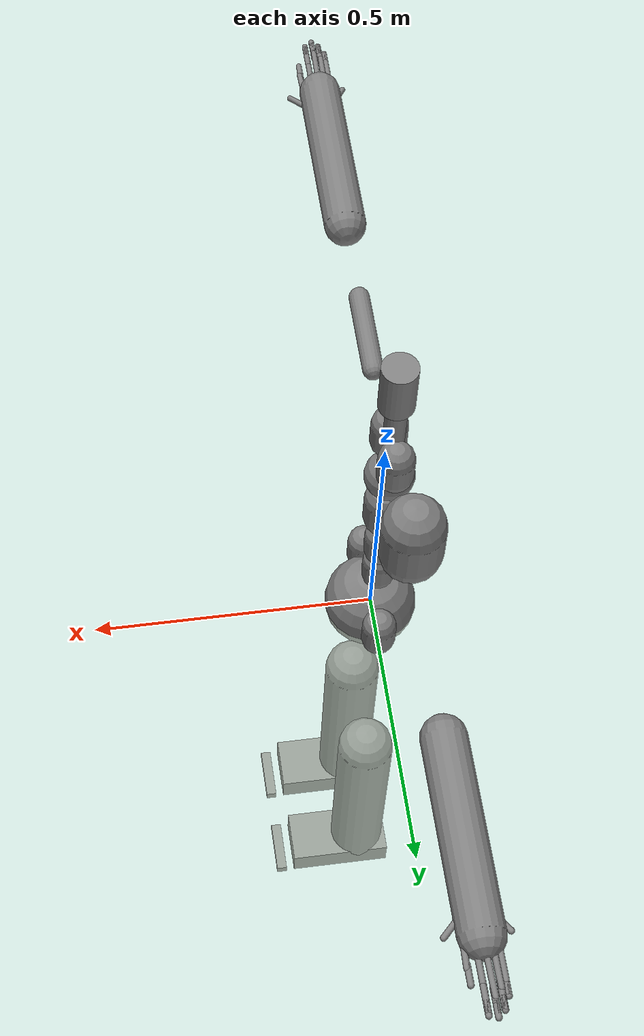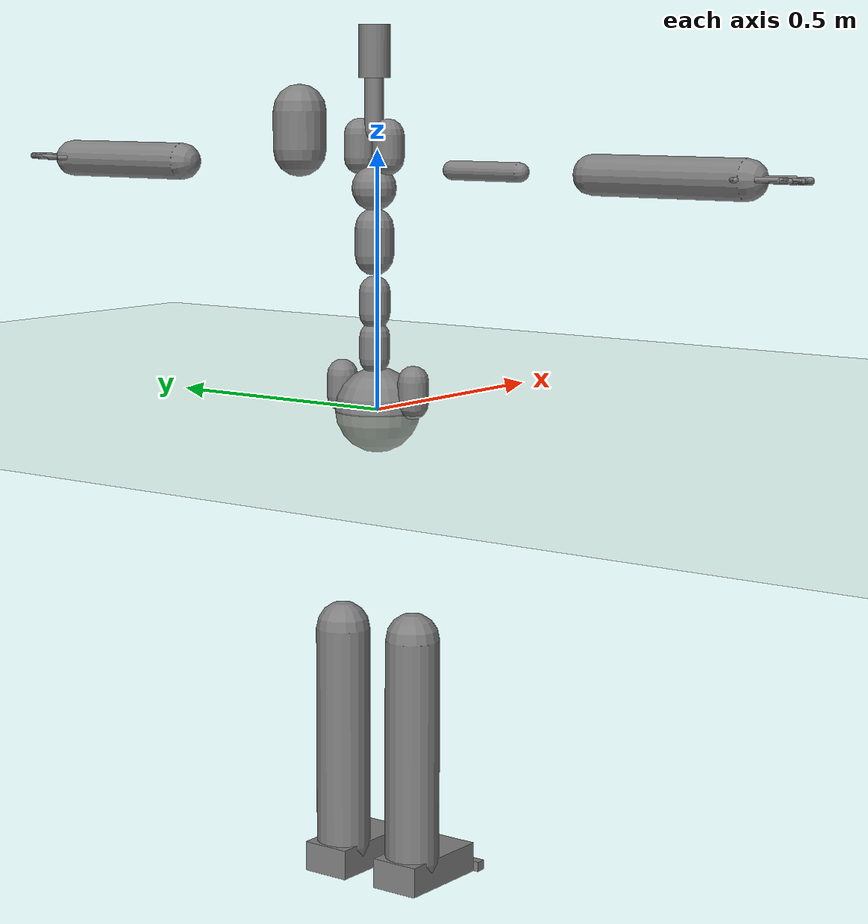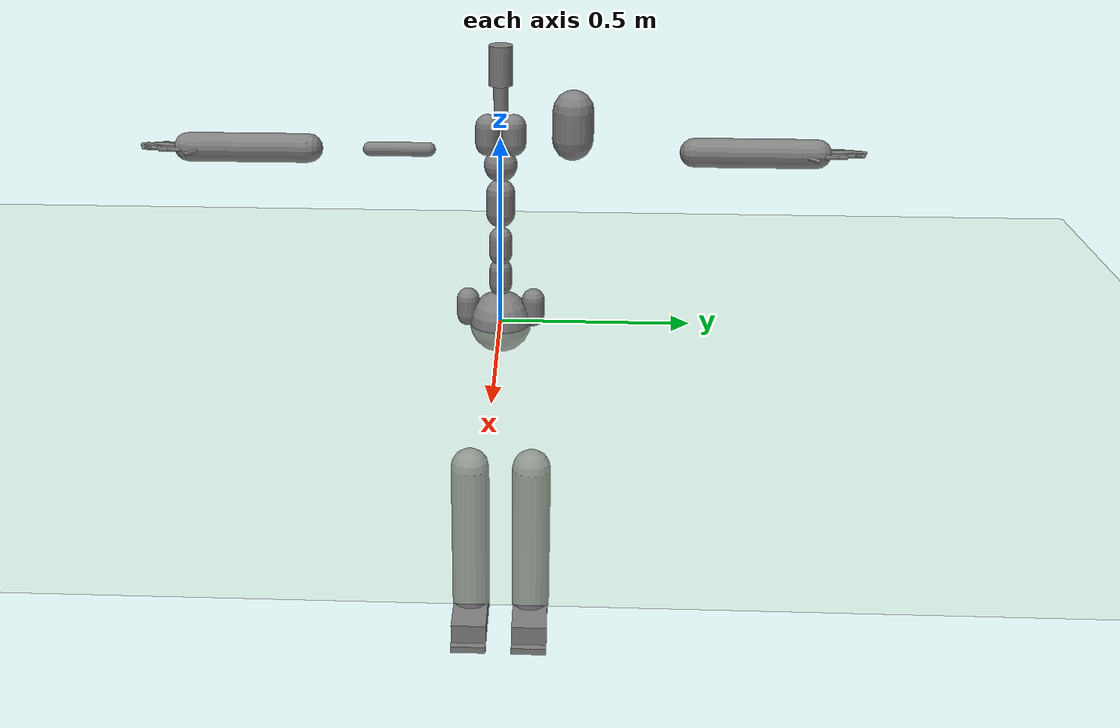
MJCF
<?xml version="1.0" ?>
<mujoco model="humanoid">
  <compiler coordinate="local"/>
  <statistic extent="2" center="0 0 1"/>
  <option timestep="0.00555"/>
  <default>
    <motor ctrlrange="-1 1" ctrllimited="true"/>
    <geom type="capsule" condim="1" friction="1.0 0.05 0.05" solimp=".9 .99 .003" solref=".015 1"/>
    <joint type="hinge" damping="0.1" stiffness="5" armature=".007" limited="true" solimplimit="0 .99 .01"/>
    <site size=".04" group="3"/>
  </default>
  <asset>
    <texture type="skybox" builtin="gradient" rgb1=".4 .5 .6" rgb2="0 0 0" width="100" height="100"/>
    <texture builtin="flat" height="1278" mark="cross" markrgb="1 1 1" name="texgeom" random="0.01" rgb1="0.8 0.6 0.4" rgb2="0.8 0.6 0.4" type="cube" width="127"/>
    <texture builtin="checker" height="100" name="texplane" rgb1="0 0 0" rgb2="0.8 0.8 0.8" type="2d" width="100"/>
    <material name="MatPlane" reflectance="0.5" shininess="1" specular="1" texrepeat="60 60" texture="texplane"/>
    <material name="geom" texture="texgeom" texuniform="true"/>
  </asset>
  <worldbody>
    <light cutoff="100" diffuse="1 1 1" dir="-0 0 -1.3" directional="true" exponent="1" pos="0 0 1.3" specular=".1 .1 .1"/>
    <geom conaffinity="1" condim="3" name="floor" pos="0 0 0" rgba="0.8 0.9 0.8 1" size="100 100 .2" type="plane" material="MatPlane"/>
    <body name="pHipOrigin" pos="0 0 0">
      <freejoint name="pHipOrigin"/>
      <geom type="sphere" contype="1" conaffinity="1" density="4629.6296296296305" size="0.08276" pos="0.0000 0.0000 -0.0000"/>
      <body name="jL5S1" pos="-0.00932583 0 0.08393225">
        <geom type="capsule" contype="1" conaffinity="1" density="1000" fromto="0 0 0.01689 0 0 0.05911" size="0.02956"/>
        <joint name="jL5S1_x" type="hinge" pos="0 0 0" axis="1 0 0" stiffness="500" damping="500" armature="0.02" range="-180.0000 180.0000"/>
        <joint name="jL5S1_y" type="hinge" pos="0 0 0" axis="0 1 0" stiffness="500" damping="500" armature="0.02" range="-180.0000 180.0000"/>
        <joint name="jL5S1_z" type="hinge" pos="0 0 0" axis="0 0 1" stiffness="500" damping="500" armature="0.02" range="-180.0000 180.0000"/>
        <body name="jL4L3" pos="0 0 0.08608951">
          <geom type="capsule" contype="1" conaffinity="1" density="1000" fromto="0 0 0.01722 0 0 0.06026" size="0.03013"/>
          <joint name="jL4L3_x" type="hinge" pos="0 0 0" axis="1 0 0" stiffness="500" damping="500" armature="0.02" range="-180.0000 180.0000"/>
          <joint name="jL4L3_y" type="hinge" pos="0 0 0" axis="0 1 0" stiffness="500" damping="500" armature="0.02" range="-180.0000 180.0000"/>
          <joint name="jL4L3_z" type="hinge" pos="0 0 0" axis="0 0 1" stiffness="500" damping="500" armature="0.02" range="-180.0000 180.0000"/>
          <body name="jL1T12" pos="-0.00082706 0 0.10720158">
            <geom type="capsule" contype="1" conaffinity="1" density="1000" fromto="0 0 0.02144 0 0 0.07504" size="0.03752"/>
            <joint name="jL1T12_x" type="hinge" pos="0 0 0" axis="1 0 0" stiffness="500" damping="500" armature="0.02" range="-180.0000 180.0000"/>
            <joint name="jL1T12_y" type="hinge" pos="0 0 0" axis="0 1 0" stiffness="500" damping="500" armature="0.02" range="-180.0000 180.0000"/>
            <joint name="jL1T12_z" type="hinge" pos="0 0 0" axis="0 0 1" stiffness="500" damping="500" armature="0.02" range="-180.0000 180.0000"/>
            <body name="jT9T8" pos="-0.00082871 0 0.10720678">
              <geom type="sphere" contype="1" conaffinity="1" density="1000" size="0.04288" pos="0.000 0.0000 0.042884"/>
              <joint name="jT9T8_x" type="hinge" pos="0 0 0" axis="1 0 0" stiffness="500" damping="500" armature="0.02" range="-180.0000 180.0000"/>
              <joint name="jT9T8_y" type="hinge" pos="0 0 0" axis="0 1 0" stiffness="500" damping="500" armature="0.02" range="-180.0000 180.0000"/>
              <joint name="jT9T8_z" type="hinge" pos="0 0 0" axis="0 0 1" stiffness="500" damping="500" armature="0.02" range="-180.0000 180.0000"/>
              <body name="jT1C7" pos="0 0 0.15026799">
                <geom type="capsule" contype="1" conaffinity="1" density="1000" fromto="0 0 0 0.00000000 0.00000000 0.15026799" size="0.01803"/>
                <joint name="jT1C7_x" type="hinge" pos="0 0 0" axis="1 0 0" stiffness="500" damping="500" armature="0.02" range="-180.0000 180.0000"/>
                <joint name="jT1C7_y" type="hinge" pos="0 0 0" axis="0 1 0" stiffness="500" damping="500" armature="0.02" range="-180.0000 180.0000"/>
                <joint name="jT1C7_z" type="hinge" pos="0 0 0" axis="0 0 1" stiffness="500" damping="500" armature="0.02" range="-180.0000 180.0000"/>
                <body name="jC1Head" pos="0.00117892 0 0.09992884">
                  <geom type="cylinder" contype="1" conaffinity="1" density="1000" fromto="0 0 0 0 0 0.09994" size="0.02998"/>
                  <joint name="jC1Head_x" type="hinge" pos="0 0 0" axis="1 0 0" stiffness="500" damping="500" armature="0.02" range="-180.0000 180.0000"/>
                  <joint name="jC1Head_y" type="hinge" pos="0 0 0" axis="0 1 0" stiffness="500" damping="500" armature="0.02" range="-180.0000 180.0000"/>
                  <joint name="jC1Head_z" type="hinge" pos="0 0 0" axis="0 0 1" stiffness="500" damping="500" armature="0.02" range="-180.0000 180.0000"/>
                </body>
              </body>
              <body name="jRightT4Shoulder" pos="0 -0.03356189 0.08183124">
                <geom type="capsule" contype="1" conaffinity="1" density="1000" fromto="0 0 0.01769 0 0 0.06191" size="0.03096"/>
                <joint name="jRightT4Shoulder_x" type="hinge" pos="0 0 0" axis="1 0 0" stiffness="500" damping="500" armature="0.02" range="-180.0000 180.0000"/>
                <joint name="jRightT4Shoulder_y" type="hinge" pos="0 0 0" axis="0 1 0" stiffness="500" damping="500" armature="0.02" range="-180.0000 180.0000"/>
                <joint name="jRightT4Shoulder_z" type="hinge" pos="0 0 0" axis="0 0 1" stiffness="500" damping="500" armature="0.02" range="-180.0000 180.0000"/>
                <body name="jRightShoulder" pos="0 -0.15032312 0">
                  <geom type="capsule" contype="1" conaffinity="1" density="1000" fromto="0 0 0 0.00000000 -0.15032312 0.00000000" size="0.01804"/>
                  <joint name="jRightShoulder_x" type="hinge" pos="0 0 0" axis="1 0 0" stiffness="500" damping="500" armature="0.02" range="-180.0000 180.0000"/>
                  <joint name="jRightShoulder_y" type="hinge" pos="0 0 0" axis="0 1 0" stiffness="500" damping="500" armature="0.02" range="-180.0000 180.0000"/>
                  <joint name="jRightShoulder_z" type="hinge" pos="0 0 0" axis="0 0 1" stiffness="500" damping="500" armature="0.02" range="-180.0000 180.0000"/>
                  <body name="jRightElbow" pos="0 -0.30869776 0">
                    <geom type="capsule" contype="1" conaffinity="1" density="1000" fromto="0 0 0 0.00000000 -0.30869776 0.00000000" size="0.03704"/>
                    <joint name="jRightElbow_x" type="hinge" pos="0 0 0" axis="1 0 0" stiffness="500" damping="500" armature="0.02" range="-180.0000 180.0000"/>
                    <joint name="jRightElbow_y" type="hinge" pos="0 0 0" axis="0 1 0" stiffness="500" damping="500" armature="0.02" range="-180.0000 180.0000"/>
                    <joint name="jRightElbow_z" type="hinge" pos="0 0 0" axis="0 0 1" stiffness="500" damping="500" armature="0.02" range="-180.0000 180.0000"/>
                    <body name="jRightWrist" pos="0.00010086 -0.25059176 0">
                      <geom density="1000" type="box" pos="0 0 0" size="0.035 0.03 0.01" quat="1.0000 0.0000 0.0000 0.0000"/>
                      <joint name="jRightWrist_x" type="hinge" pos="0 0 0" axis="1 0 0" stiffness="500" damping="500" armature="0.02" range="-180.0000 180.0000"/>
                      <joint name="jRightWrist_y" type="hinge" pos="0 0 0" axis="0 1 0" stiffness="500" damping="500" armature="0.02" range="-180.0000 180.0000"/>
                      <joint name="jRightWrist_z" type="hinge" pos="0 0 0" axis="0 0 1" stiffness="500" damping="500" armature="0.02" range="-180.0000 180.0000"/>
                      <body name="jRightFirstCMC" pos="0.02765944 -0.02651312 -0.00125259">
                        <geom type="capsule" contype="1" conaffinity="1" density="1000" fromto="0 0 0 0.02765944 -0.02651312 -0.00125259" size="0.005"/>
                        <joint name="jRightFirstCMC_x" type="hinge" pos="0 0 0" axis="1 0 0" stiffness="500" damping="500" armature="0.02" range="-180.0000 180.0000"/>
                        <joint name="jRightFirstCMC_y" type="hinge" pos="0 0 0" axis="0 1 0" stiffness="500" damping="500" armature="0.02" range="-180.0000 180.0000"/>
                        <joint name="jRightFirstCMC_z" type="hinge" pos="0 0 0" axis="0 0 1" stiffness="500" damping="500" armature="0.02" range="-180.0000 180.0000"/>
                        <body name="jRightFirstMCP" pos="0.00135224 -0.03815922 0.00080630">
                          <geom type="capsule" contype="1" conaffinity="1" density="1000" fromto="0 0 0 0.00135224 -0.03815922 0.00080630" size="0.005"/>
                          <joint name="jRightFirstMCP_x" type="hinge" pos="0 0 0" axis="1 0 0" stiffness="500" damping="500" armature="0.02" range="-180.0000 180.0000"/>
                          <joint name="jRightFirstMCP_y" type="hinge" pos="0 0 0" axis="0 1 0" stiffness="500" damping="500" armature="0.02" range="-180.0000 180.0000"/>
                          <joint name="jRightFirstMCP_z" type="hinge" pos="0 0 0" axis="0 0 1" stiffness="500" damping="500" armature="0.02" range="-180.0000 180.0000"/>
                          <body name="jRightIP" pos="0 -0.03100075 0">
                            <geom type="capsule" contype="1" conaffinity="1" density="1000" fromto="0 0 0 0.00000000 -0.03100075 0.00000000" size="0.005"/>
                            <joint name="jRightIP_x" type="hinge" pos="0 0 0" axis="1 0 0" stiffness="500" damping="500" armature="0.02" range="-180.0000 180.0000"/>
                            <joint name="jRightIP_y" type="hinge" pos="0 0 0" axis="0 1 0" stiffness="500" damping="500" armature="0.02" range="-180.0000 180.0000"/>
                            <joint name="jRightIP_z" type="hinge" pos="0 0 0" axis="0 0 1" stiffness="500" damping="500" armature="0.02" range="-180.0000 180.0000"/>
                          </body>
                        </body>
                      </body>
                      <body name="jRightSecondCMC" pos="0.01145456 -0.03346660 -0.00058374">
                        <geom type="capsule" contype="1" conaffinity="1" density="1000" fromto="0 0 0 0.01145456 -0.03346660 -0.00058374" size="0.005"/>
                        <joint name="jRightSecondCMC_x" type="hinge" pos="0 0 0" axis="1 0 0" stiffness="500" damping="500" armature="0.02" range="-180.0000 180.0000"/>
                        <joint name="jRightSecondCMC_y" type="hinge" pos="0 0 0" axis="0 1 0" stiffness="500" damping="500" armature="0.02" range="-180.0000 180.0000"/>
                        <joint name="jRightSecondCMC_z" type="hinge" pos="0 0 0" axis="0 0 1" stiffness="500" damping="500" armature="0.02" range="-180.0000 180.0000"/>
                        <body name="jRightSecondMCP" pos="-0.00034904 -0.05566987 -0.00057748">
                          <geom type="capsule" contype="1" conaffinity="1" density="1000" fromto="0 0 0 -0.00034904 -0.05566987 -0.00057748" size="0.005"/>
                          <joint name="jRightSecondMCP_x" type="hinge" pos="0 0 0" axis="1 0 0" stiffness="500" damping="500" armature="0.02" range="-180.0000 180.0000"/>
                          <joint name="jRightSecondMCP_y" type="hinge" pos="0 0 0" axis="0 1 0" stiffness="500" damping="500" armature="0.02" range="-180.0000 180.0000"/>
                          <joint name="jRightSecondMCP_z" type="hinge" pos="0 0 0" axis="0 0 1" stiffness="500" damping="500" armature="0.02" range="-180.0000 180.0000"/>
                          <body name="jRightSecondPIP" pos="0 -0.04019003 0">
                            <geom type="capsule" contype="1" conaffinity="1" density="1000" fromto="0 0 0 0.00000000 -0.04019003 0.00000000" size="0.005"/>
                            <joint name="jRightSecondPIP_x" type="hinge" pos="0 0 0" axis="1 0 0" stiffness="500" damping="500" armature="0.02" range="-180.0000 180.0000"/>
                            <joint name="jRightSecondPIP_y" type="hinge" pos="0 0 0" axis="0 1 0" stiffness="500" damping="500" armature="0.02" range="-180.0000 180.0000"/>
                            <joint name="jRightSecondPIP_z" type="hinge" pos="0 0 0" axis="0 0 1" stiffness="500" damping="500" armature="0.02" range="-180.0000 180.0000"/>
                            <body name="jRightSecondDIP" pos="0 -0.02186451 0">
                              <geom type="capsule" contype="1" conaffinity="1" density="1000" fromto="0 0 0 0.00000000 -0.02186451 0.00000000" size="0.005"/>
                              <joint name="jRightSecondDIP_x" type="hinge" pos="0 0 0" axis="1 0 0" stiffness="500" damping="500" armature="0.02" range="-180.0000 180.0000"/>
                              <joint name="jRightSecondDIP_y" type="hinge" pos="0 0 0" axis="0 1 0" stiffness="500" damping="500" armature="0.02" range="-180.0000 180.0000"/>
                              <joint name="jRightSecondDIP_z" type="hinge" pos="0 0 0" axis="0 0 1" stiffness="500" damping="500" armature="0.02" range="-180.0000 180.0000"/>
                            </body>
                          </body>
                        </body>
                      </body>
                      <body name="jRightThirdCMC" pos="-0.00072281 -0.03908799 0.00164332">
                        <geom type="capsule" contype="1" conaffinity="1" density="1000" fromto="0 0 0 -0.00072281 -0.03908799 0.00164332" size="0.005"/>
                        <joint name="jRightThirdCMC_x" type="hinge" pos="0 0 0" axis="1 0 0" stiffness="500" damping="500" armature="0.02" range="-180.0000 180.0000"/>
                        <joint name="jRightThirdCMC_y" type="hinge" pos="0 0 0" axis="0 1 0" stiffness="500" damping="500" armature="0.02" range="-180.0000 180.0000"/>
                        <joint name="jRightThirdCMC_z" type="hinge" pos="0 0 0" axis="0 0 1" stiffness="500" damping="500" armature="0.02" range="-180.0000 180.0000"/>
                        <body name="jRightThirdMCP" pos="-0.00066704 -0.05526414 0.00150352">
                          <geom type="capsule" contype="1" conaffinity="1" density="1000" fromto="0 0 0 -0.00066704 -0.05526414 0.00150352" size="0.005"/>
                          <joint name="jRightThirdMCP_x" type="hinge" pos="0 0 0" axis="1 0 0" stiffness="500" damping="500" armature="0.02" range="-180.0000 180.0000"/>
                          <joint name="jRightThirdMCP_y" type="hinge" pos="0 0 0" axis="0 1 0" stiffness="500" damping="500" armature="0.02" range="-180.0000 180.0000"/>
                          <joint name="jRightThirdMCP_z" type="hinge" pos="0 0 0" axis="0 0 1" stiffness="500" damping="500" armature="0.02" range="-180.0000 180.0000"/>
                          <body name="jRightThirdPIP" pos="0 -0.04208056 0">
                            <geom type="capsule" contype="1" conaffinity="1" density="1000" fromto="0 0 0 0.00000000 -0.04208056 0.00000000" size="0.005"/>
                            <joint name="jRightThirdPIP_x" type="hinge" pos="0 0 0" axis="1 0 0" stiffness="500" damping="500" armature="0.02" range="-180.0000 180.0000"/>
                            <joint name="jRightThirdPIP_y" type="hinge" pos="0 0 0" axis="0 1 0" stiffness="500" damping="500" armature="0.02" range="-180.0000 180.0000"/>
                            <joint name="jRightThirdPIP_z" type="hinge" pos="0 0 0" axis="0 0 1" stiffness="500" damping="500" armature="0.02" range="-180.0000 180.0000"/>
                            <body name="jRightThirdDIP" pos="0 -0.01854092 0">
                              <geom type="capsule" contype="1" conaffinity="1" density="1000" fromto="0 0 0 0.00000000 -0.01854092 0.00000000" size="0.005"/>
                              <joint name="jRightThirdDIP_x" type="hinge" pos="0 0 0" axis="1 0 0" stiffness="500" damping="500" armature="0.02" range="-180.0000 180.0000"/>
                              <joint name="jRightThirdDIP_y" type="hinge" pos="0 0 0" axis="0 1 0" stiffness="500" damping="500" armature="0.02" range="-180.0000 180.0000"/>
                              <joint name="jRightThirdDIP_z" type="hinge" pos="0 0 0" axis="0 0 1" stiffness="500" damping="500" armature="0.02" range="-180.0000 180.0000"/>
                            </body>
                          </body>
                        </body>
                      </body>
                      <body name="jRightFourthCMC" pos="-0.01189793 -0.03313772 0.00078001">
                        <geom type="capsule" contype="1" conaffinity="1" density="1000" fromto="0 0 0 -0.01189793 -0.03313772 0.00078001" size="0.005"/>
                        <joint name="jRightFourthCMC_x" type="hinge" pos="0 0 0" axis="1 0 0" stiffness="500" damping="500" armature="0.02" range="-180.0000 180.0000"/>
                        <joint name="jRightFourthCMC_y" type="hinge" pos="0 0 0" axis="0 1 0" stiffness="500" damping="500" armature="0.02" range="-180.0000 180.0000"/>
                        <joint name="jRightFourthCMC_z" type="hinge" pos="0 0 0" axis="0 0 1" stiffness="500" damping="500" armature="0.02" range="-180.0000 180.0000"/>
                        <body name="jRightFourthMCP" pos="-0.00038090 -0.05220571 0.00082019">
                          <geom type="capsule" contype="1" conaffinity="1" density="1000" fromto="0 0 0 -0.00038090 -0.05220571 0.00082019" size="0.005"/>
                          <joint name="jRightFourthMCP_x" type="hinge" pos="0 0 0" axis="1 0 0" stiffness="500" damping="500" armature="0.02" range="-180.0000 180.0000"/>
                          <joint name="jRightFourthMCP_y" type="hinge" pos="0 0 0" axis="0 1 0" stiffness="500" damping="500" armature="0.02" range="-180.0000 180.0000"/>
                          <joint name="jRightFourthMCP_z" type="hinge" pos="0 0 0" axis="0 0 1" stiffness="500" damping="500" armature="0.02" range="-180.0000 180.0000"/>
                          <body name="jRightFourthPIP" pos="0 -0.04168838 0">
                            <geom type="capsule" contype="1" conaffinity="1" density="1000" fromto="0 0 0 0.00000000 -0.04168838 0.00000000" size="0.005"/>
                            <joint name="jRightFourthPIP_x" type="hinge" pos="0 0 0" axis="1 0 0" stiffness="500" damping="500" armature="0.02" range="-180.0000 180.0000"/>
                            <joint name="jRightFourthPIP_y" type="hinge" pos="0 0 0" axis="0 1 0" stiffness="500" damping="500" armature="0.02" range="-180.0000 180.0000"/>
                            <joint name="jRightFourthPIP_z" type="hinge" pos="0 0 0" axis="0 0 1" stiffness="500" damping="500" armature="0.02" range="-180.0000 180.0000"/>
                            <body name="jRightFourthDIP" pos="0 -0.02086242 0">
                              <geom type="capsule" contype="1" conaffinity="1" density="1000" fromto="0 0 0 0.00000000 -0.02086242 0.00000000" size="0.005"/>
                              <joint name="jRightFourthDIP_x" type="hinge" pos="0 0 0" axis="1 0 0" stiffness="500" damping="500" armature="0.02" range="-180.0000 180.0000"/>
                              <joint name="jRightFourthDIP_y" type="hinge" pos="0 0 0" axis="0 1 0" stiffness="500" damping="500" armature="0.02" range="-180.0000 180.0000"/>
                              <joint name="jRightFourthDIP_z" type="hinge" pos="0 0 0" axis="0 0 1" stiffness="500" damping="500" armature="0.02" range="-180.0000 180.0000"/>
                            </body>
                          </body>
                        </body>
                      </body>
                      <body name="jRightFifthCMC" pos="-0.02084653 -0.02904726 0.00057301">
                        <geom type="capsule" contype="1" conaffinity="1" density="1000" fromto="0 0 0 -0.02084653 -0.02904726 0.00057301" size="0.005"/>
                        <joint name="jRightFifthCMC_x" type="hinge" pos="0 0 0" axis="1 0 0" stiffness="500" damping="500" armature="0.02" range="-180.0000 180.0000"/>
                        <joint name="jRightFifthCMC_y" type="hinge" pos="0 0 0" axis="0 1 0" stiffness="500" damping="500" armature="0.02" range="-180.0000 180.0000"/>
                        <joint name="jRightFifthCMC_z" type="hinge" pos="0 0 0" axis="0 0 1" stiffness="500" damping="500" armature="0.02" range="-180.0000 180.0000"/>
                        <body name="jRightFifthMCP" pos="-0.00000733 -0.04960340 0.00068260">
                          <geom type="capsule" contype="1" conaffinity="1" density="1000" fromto="0 0 0 -0.00000733 -0.04960340 0.00068260" size="0.005"/>
                          <joint name="jRightFifthMCP_x" type="hinge" pos="0 0 0" axis="1 0 0" stiffness="500" damping="500" armature="0.02" range="-180.0000 180.0000"/>
                          <joint name="jRightFifthMCP_y" type="hinge" pos="0 0 0" axis="0 1 0" stiffness="500" damping="500" armature="0.02" range="-180.0000 180.0000"/>
                          <joint name="jRightFifthMCP_z" type="hinge" pos="0 0 0" axis="0 0 1" stiffness="500" damping="500" armature="0.02" range="-180.0000 180.0000"/>
                          <body name="jRightFifthPIP" pos="0 -0.03484849 0">
                            <geom type="capsule" contype="1" conaffinity="1" density="1000" fromto="0 0 0 0.00000000 -0.03484849 0.00000000" size="0.005"/>
                            <joint name="jRightFifthPIP_x" type="hinge" pos="0 0 0" axis="1 0 0" stiffness="500" damping="500" armature="0.02" range="-180.0000 180.0000"/>
                            <joint name="jRightFifthPIP_y" type="hinge" pos="0 0 0" axis="0 1 0" stiffness="500" damping="500" armature="0.02" range="-180.0000 180.0000"/>
                            <joint name="jRightFifthPIP_z" type="hinge" pos="0 0 0" axis="0 0 1" stiffness="500" damping="500" armature="0.02" range="-180.0000 180.0000"/>
                            <body name="jRightFifthDIP" pos="0 -0.01819398 0">
                              <geom type="capsule" contype="1" conaffinity="1" density="1000" fromto="0 0 0 0.00000000 -0.01819398 0.00000000" size="0.005"/>
                              <joint name="jRightFifthDIP_x" type="hinge" pos="0 0 0" axis="1 0 0" stiffness="500" damping="500" armature="0.02" range="-180.0000 180.0000"/>
                              <joint name="jRightFifthDIP_y" type="hinge" pos="0 0 0" axis="0 1 0" stiffness="500" damping="500" armature="0.02" range="-180.0000 180.0000"/>
                              <joint name="jRightFifthDIP_z" type="hinge" pos="0 0 0" axis="0 0 1" stiffness="500" damping="500" armature="0.02" range="-180.0000 180.0000"/>
                            </body>
                          </body>
                        </body>
                      </body>
                    </body>
                  </body>
                </body>
              </body>
              <body name="jLeftT4Shoulder" pos="0 0.03368335 0.08212739">
                <geom type="capsule" contype="1" conaffinity="1" density="1000" fromto="0 0 0.01775 0 0 0.06214" size="0.03107"/>
                <joint name="jLeftT4Shoulder_x" type="hinge" pos="0 0 0" axis="1 0 0" stiffness="500" damping="500" armature="0.02" range="-180.0000 180.0000"/>
                <joint name="jLeftT4Shoulder_y" type="hinge" pos="0 0 0" axis="0 1 0" stiffness="500" damping="500" armature="0.02" range="-180.0000 180.0000"/>
                <joint name="jLeftT4Shoulder_z" type="hinge" pos="0 0 0" axis="0 0 1" stiffness="500" damping="500" armature="0.02" range="-180.0000 180.0000"/>
                <body name="jLeftShoulder" pos="0 0.14922175 0">
                  <geom type="capsule" contype="1" conaffinity="1" density="1000" fromto="0 0 0.02984 0 0 0.10446" size="0.05223"/>
                  <joint name="jLeftShoulder_x" type="hinge" pos="0 0 0" axis="1 0 0" stiffness="500" damping="500" armature="0.02" range="-180.0000 180.0000"/>
                  <joint name="jLeftShoulder_y" type="hinge" pos="0 0 0" axis="0 1 0" stiffness="500" damping="500" armature="0.02" range="-180.0000 180.0000"/>
                  <joint name="jLeftShoulder_z" type="hinge" pos="0 0 0" axis="0 0 1" stiffness="500" damping="500" armature="0.02" range="-180.0000 180.0000"/>
                  <body name="jLeftElbow" pos="0 0.30831647 0">
                    <geom type="capsule" contype="1" conaffinity="1" density="1000" fromto="0 0 0 0.00000000 0.30831647 0.00000000" size="0.03700"/>
                    <joint name="jLeftElbow_x" type="hinge" pos="0 0 0" axis="1 0 0" stiffness="500" damping="500" armature="0.02" range="-180.0000 180.0000"/>
                    <joint name="jLeftElbow_y" type="hinge" pos="0 0 0" axis="0 1 0" stiffness="500" damping="500" armature="0.02" range="-180.0000 180.0000"/>
                    <joint name="jLeftElbow_z" type="hinge" pos="0 0 0" axis="0 0 1" stiffness="500" damping="500" armature="0.02" range="-180.0000 180.0000"/>
                    <body name="jLeftWrist" pos="0.00010077 0.25036556 0">
                      <geom density="1000" type="box" pos="0 0 0" size="0.035 0.03 0.01" quat="1.0000 0.0000 0.0000 0.0000"/>
                      <joint name="jLeftWrist_x" type="hinge" pos="0 0 0" axis="1 0 0" stiffness="500" damping="500" armature="0.02" range="-180.0000 180.0000"/>
                      <joint name="jLeftWrist_y" type="hinge" pos="0 0 0" axis="0 1 0" stiffness="500" damping="500" armature="0.02" range="-180.0000 180.0000"/>
                      <joint name="jLeftWrist_z" type="hinge" pos="0 0 0" axis="0 0 1" stiffness="500" damping="500" armature="0.02" range="-180.0000 180.0000"/>
                      <body name="jLeftFirstCMC" pos="0.02707207 0.02713601 -0.00121166">
                        <geom type="capsule" contype="1" conaffinity="1" density="1000" fromto="0 0 0 0.02707207 0.02713601 -0.00121166" size="0.005"/>
                        <joint name="jLeftFirstCMC_x" type="hinge" pos="0 0 0" axis="1 0 0" stiffness="500" damping="500" armature="0.02" range="-180.0000 180.0000"/>
                        <joint name="jLeftFirstCMC_y" type="hinge" pos="0 0 0" axis="0 1 0" stiffness="500" damping="500" armature="0.02" range="-180.0000 180.0000"/>
                        <joint name="jLeftFirstCMC_z" type="hinge" pos="0 0 0" axis="0 0 1" stiffness="500" damping="500" armature="0.02" range="-180.0000 180.0000"/>
                        <body name="jLeftFirstMCP" pos="0.00133921 0.03815836 0.00078577">
                          <geom type="capsule" contype="1" conaffinity="1" density="1000" fromto="0 0 0 0.00133921 0.03815836 0.00078577" size="0.005"/>
                          <joint name="jLeftFirstMCP_x" type="hinge" pos="0 0 0" axis="1 0 0" stiffness="500" damping="500" armature="0.02" range="-180.0000 180.0000"/>
                          <joint name="jLeftFirstMCP_y" type="hinge" pos="0 0 0" axis="0 1 0" stiffness="500" damping="500" armature="0.02" range="-180.0000 180.0000"/>
                          <joint name="jLeftFirstMCP_z" type="hinge" pos="0 0 0" axis="0 0 1" stiffness="500" damping="500" armature="0.02" range="-180.0000 180.0000"/>
                          <body name="jLeftIP" pos="0 0.03100075 0">
                            <geom type="capsule" contype="1" conaffinity="1" density="1000" fromto="0 0 0 0.00000000 0.03100075 0.00000000" size="0.005"/>
                            <joint name="jLeftIP_x" type="hinge" pos="0 0 0" axis="1 0 0" stiffness="500" damping="500" armature="0.02" range="-180.0000 180.0000"/>
                            <joint name="jLeftIP_y" type="hinge" pos="0 0 0" axis="0 1 0" stiffness="500" damping="500" armature="0.02" range="-180.0000 180.0000"/>
                            <joint name="jLeftIP_z" type="hinge" pos="0 0 0" axis="0 0 1" stiffness="500" damping="500" armature="0.02" range="-180.0000 180.0000"/>
                          </body>
                        </body>
                      </body>
                      <body name="jLeftSecondCMC" pos="0.01158650 0.03340502 -0.00058856">
                        <geom type="capsule" contype="1" conaffinity="1" density="1000" fromto="0 0 0 0.01158650 0.03340502 -0.00058856" size="0.005"/>
                        <joint name="jLeftSecondCMC_x" type="hinge" pos="0 0 0" axis="1 0 0" stiffness="500" damping="500" armature="0.02" range="-180.0000 180.0000"/>
                        <joint name="jLeftSecondCMC_y" type="hinge" pos="0 0 0" axis="0 1 0" stiffness="500" damping="500" armature="0.02" range="-180.0000 180.0000"/>
                        <joint name="jLeftSecondCMC_z" type="hinge" pos="0 0 0" axis="0 0 1" stiffness="500" damping="500" armature="0.02" range="-180.0000 180.0000"/>
                        <body name="jLeftSecondMCP" pos="-0.00030434 0.05567101 -0.00058461">
                          <geom type="capsule" contype="1" conaffinity="1" density="1000" fromto="0 0 0 -0.00030434 0.05567101 -0.00058461" size="0.005"/>
                          <joint name="jLeftSecondMCP_x" type="hinge" pos="0 0 0" axis="1 0 0" stiffness="500" damping="500" armature="0.02" range="-180.0000 180.0000"/>
                          <joint name="jLeftSecondMCP_y" type="hinge" pos="0 0 0" axis="0 1 0" stiffness="500" damping="500" armature="0.02" range="-180.0000 180.0000"/>
                          <joint name="jLeftSecondMCP_z" type="hinge" pos="0 0 0" axis="0 0 1" stiffness="500" damping="500" armature="0.02" range="-180.0000 180.0000"/>
                          <body name="jLeftSecondPIP" pos="0 0.04019003 0">
                            <geom type="capsule" contype="1" conaffinity="1" density="1000" fromto="0 0 0 0.00000000 0.04019003 0.00000000" size="0.005"/>
                            <joint name="jLeftSecondPIP_x" type="hinge" pos="0 0 0" axis="1 0 0" stiffness="500" damping="500" armature="0.02" range="-180.0000 180.0000"/>
                            <joint name="jLeftSecondPIP_y" type="hinge" pos="0 0 0" axis="0 1 0" stiffness="500" damping="500" armature="0.02" range="-180.0000 180.0000"/>
                            <joint name="jLeftSecondPIP_z" type="hinge" pos="0 0 0" axis="0 0 1" stiffness="500" damping="500" armature="0.02" range="-180.0000 180.0000"/>
                            <body name="jLeftSecondDIP" pos="0 0.02186451 0">
                              <geom type="capsule" contype="1" conaffinity="1" density="1000" fromto="0 0 0 0.00000000 0.02186451 0.00000000" size="0.005"/>
                              <joint name="jLeftSecondDIP_x" type="hinge" pos="0 0 0" axis="1 0 0" stiffness="500" damping="500" armature="0.02" range="-180.0000 180.0000"/>
                              <joint name="jLeftSecondDIP_y" type="hinge" pos="0 0 0" axis="0 1 0" stiffness="500" damping="500" armature="0.02" range="-180.0000 180.0000"/>
                              <joint name="jLeftSecondDIP_z" type="hinge" pos="0 0 0" axis="0 0 1" stiffness="500" damping="500" armature="0.02" range="-180.0000 180.0000"/>
                            </body>
                          </body>
                        </body>
                      </body>
                      <body name="jLeftThirdCMC" pos="-0.00072706 0.03909150 0.00158854">
                        <geom type="capsule" contype="1" conaffinity="1" density="1000" fromto="0 0 0 -0.00072706 0.03909150 0.00158854" size="0.005"/>
                        <joint name="jLeftThirdCMC_x" type="hinge" pos="0 0 0" axis="1 0 0" stiffness="500" damping="500" armature="0.02" range="-180.0000 180.0000"/>
                        <joint name="jLeftThirdCMC_y" type="hinge" pos="0 0 0" axis="0 1 0" stiffness="500" damping="500" armature="0.02" range="-180.0000 180.0000"/>
                        <joint name="jLeftThirdCMC_z" type="hinge" pos="0 0 0" axis="0 0 1" stiffness="500" damping="500" armature="0.02" range="-180.0000 180.0000"/>
                        <body name="jLeftThirdMCP" pos="-0.00067242 0.05526521 0.00147330">
                          <geom type="capsule" contype="1" conaffinity="1" density="1000" fromto="0 0 0 -0.00067242 0.05526521 0.00147330" size="0.005"/>
                          <joint name="jLeftThirdMCP_x" type="hinge" pos="0 0 0" axis="1 0 0" stiffness="500" damping="500" armature="0.02" range="-180.0000 180.0000"/>
                          <joint name="jLeftThirdMCP_y" type="hinge" pos="0 0 0" axis="0 1 0" stiffness="500" damping="500" armature="0.02" range="-180.0000 180.0000"/>
                          <joint name="jLeftThirdMCP_z" type="hinge" pos="0 0 0" axis="0 0 1" stiffness="500" damping="500" armature="0.02" range="-180.0000 180.0000"/>
                          <body name="jLeftThirdPIP" pos="0 0.04208056 0">
                            <geom type="capsule" contype="1" conaffinity="1" density="1000" fromto="0 0 0 0.00000000 0.04208056 0.00000000" size="0.005"/>
                            <joint name="jLeftThirdPIP_x" type="hinge" pos="0 0 0" axis="1 0 0" stiffness="500" damping="500" armature="0.02" range="-180.0000 180.0000"/>
                            <joint name="jLeftThirdPIP_y" type="hinge" pos="0 0 0" axis="0 1 0" stiffness="500" damping="500" armature="0.02" range="-180.0000 180.0000"/>
                            <joint name="jLeftThirdPIP_z" type="hinge" pos="0 0 0" axis="0 0 1" stiffness="500" damping="500" armature="0.02" range="-180.0000 180.0000"/>
                            <body name="jLeftThirdDIP" pos="0 0.01854092 0">
                              <geom type="capsule" contype="1" conaffinity="1" density="1000" fromto="0 0 0 0.00000000 0.01854092 0.00000000" size="0.005"/>
                              <joint name="jLeftThirdDIP_x" type="hinge" pos="0 0 0" axis="1 0 0" stiffness="500" damping="500" armature="0.02" range="-180.0000 180.0000"/>
                              <joint name="jLeftThirdDIP_y" type="hinge" pos="0 0 0" axis="0 1 0" stiffness="500" damping="500" armature="0.02" range="-180.0000 180.0000"/>
                              <joint name="jLeftThirdDIP_z" type="hinge" pos="0 0 0" axis="0 0 1" stiffness="500" damping="500" armature="0.02" range="-180.0000 180.0000"/>
                            </body>
                          </body>
                        </body>
                      </body>
                      <body name="jLeftFourthCMC" pos="-0.01233451 0.03296821 0.00083265">
                        <geom type="capsule" contype="1" conaffinity="1" density="1000" fromto="0 0 0 -0.01233451 0.03296821 0.00083265" size="0.005"/>
                        <joint name="jLeftFourthCMC_x" type="hinge" pos="0 0 0" axis="1 0 0" stiffness="500" damping="500" armature="0.02" range="-180.0000 180.0000"/>
                        <joint name="jLeftFourthCMC_y" type="hinge" pos="0 0 0" axis="0 1 0" stiffness="500" damping="500" armature="0.02" range="-180.0000 180.0000"/>
                        <joint name="jLeftFourthCMC_z" type="hinge" pos="0 0 0" axis="0 0 1" stiffness="500" damping="500" armature="0.02" range="-180.0000 180.0000"/>
                        <body name="jLeftFourthMCP" pos="-0.00040962 0.05220272 0.00086745">
                          <geom type="capsule" contype="1" conaffinity="1" density="1000" fromto="0 0 0 -0.00040962 0.05220272 0.00086745" size="0.005"/>
                          <joint name="jLeftFourthMCP_x" type="hinge" pos="0 0 0" axis="1 0 0" stiffness="500" damping="500" armature="0.02" range="-180.0000 180.0000"/>
                          <joint name="jLeftFourthMCP_y" type="hinge" pos="0 0 0" axis="0 1 0" stiffness="500" damping="500" armature="0.02" range="-180.0000 180.0000"/>
                          <joint name="jLeftFourthMCP_z" type="hinge" pos="0 0 0" axis="0 0 1" stiffness="500" damping="500" armature="0.02" range="-180.0000 180.0000"/>
                          <body name="jLeftFourthPIP" pos="0 0.04168838 0">
                            <geom type="capsule" contype="1" conaffinity="1" density="1000" fromto="0 0 0 0.00000000 0.04168838 0.00000000" size="0.005"/>
                            <joint name="jLeftFourthPIP_x" type="hinge" pos="0 0 0" axis="1 0 0" stiffness="500" damping="500" armature="0.02" range="-180.0000 180.0000"/>
                            <joint name="jLeftFourthPIP_y" type="hinge" pos="0 0 0" axis="0 1 0" stiffness="500" damping="500" armature="0.02" range="-180.0000 180.0000"/>
                            <joint name="jLeftFourthPIP_z" type="hinge" pos="0 0 0" axis="0 0 1" stiffness="500" damping="500" armature="0.02" range="-180.0000 180.0000"/>
                            <body name="jLeftFourthDIP" pos="0 0.02086242 0">
                              <geom type="capsule" contype="1" conaffinity="1" density="1000" fromto="0 0 0 0.00000000 0.02086242 0.00000000" size="0.005"/>
                              <joint name="jLeftFourthDIP_x" type="hinge" pos="0 0 0" axis="1 0 0" stiffness="500" damping="500" armature="0.02" range="-180.0000 180.0000"/>
                              <joint name="jLeftFourthDIP_y" type="hinge" pos="0 0 0" axis="0 1 0" stiffness="500" damping="500" armature="0.02" range="-180.0000 180.0000"/>
                              <joint name="jLeftFourthDIP_z" type="hinge" pos="0 0 0" axis="0 0 1" stiffness="500" damping="500" armature="0.02" range="-180.0000 180.0000"/>
                            </body>
                          </body>
                        </body>
                      </body>
                      <body name="jLeftFifthCMC" pos="-0.02147805 0.02858805 0.00058222">
                        <geom type="capsule" contype="1" conaffinity="1" density="1000" fromto="0 0 0 -0.02147805 0.02858805 0.00058222" size="0.005"/>
                        <joint name="jLeftFifthCMC_x" type="hinge" pos="0 0 0" axis="1 0 0" stiffness="500" damping="500" armature="0.02" range="-180.0000 180.0000"/>
                        <joint name="jLeftFifthCMC_y" type="hinge" pos="0 0 0" axis="0 1 0" stiffness="500" damping="500" armature="0.02" range="-180.0000 180.0000"/>
                        <joint name="jLeftFifthCMC_z" type="hinge" pos="0 0 0" axis="0 0 1" stiffness="500" damping="500" armature="0.02" range="-180.0000 180.0000"/>
                        <body name="jLeftFifthMCP" pos="-0.00001407 0.04960205 0.00071374">
                          <geom type="capsule" contype="1" conaffinity="1" density="1000" fromto="0 0 0 -0.00001407 0.04960205 0.00071374" size="0.005"/>
                          <joint name="jLeftFifthMCP_x" type="hinge" pos="0 0 0" axis="1 0 0" stiffness="500" damping="500" armature="0.02" range="-180.0000 180.0000"/>
                          <joint name="jLeftFifthMCP_y" type="hinge" pos="0 0 0" axis="0 1 0" stiffness="500" damping="500" armature="0.02" range="-180.0000 180.0000"/>
                          <joint name="jLeftFifthMCP_z" type="hinge" pos="0 0 0" axis="0 0 1" stiffness="500" damping="500" armature="0.02" range="-180.0000 180.0000"/>
                          <body name="jLeftFifthPIP" pos="0 0.03484849 0">
                            <geom type="capsule" contype="1" conaffinity="1" density="1000" fromto="0 0 0 0.00000000 0.03484849 0.00000000" size="0.005"/>
                            <joint name="jLeftFifthPIP_x" type="hinge" pos="0 0 0" axis="1 0 0" stiffness="500" damping="500" armature="0.02" range="-180.0000 180.0000"/>
                            <joint name="jLeftFifthPIP_y" type="hinge" pos="0 0 0" axis="0 1 0" stiffness="500" damping="500" armature="0.02" range="-180.0000 180.0000"/>
                            <joint name="jLeftFifthPIP_z" type="hinge" pos="0 0 0" axis="0 0 1" stiffness="500" damping="500" armature="0.02" range="-180.0000 180.0000"/>
                            <body name="jLeftFifthDIP" pos="0 0.01819398 0">
                              <geom type="capsule" contype="1" conaffinity="1" density="1000" fromto="0 0 0 0.00000000 0.01819398 0.00000000" size="0.005"/>
                              <joint name="jLeftFifthDIP_x" type="hinge" pos="0 0 0" axis="1 0 0" stiffness="500" damping="500" armature="0.02" range="-180.0000 180.0000"/>
                              <joint name="jLeftFifthDIP_y" type="hinge" pos="0 0 0" axis="0 1 0" stiffness="500" damping="500" armature="0.02" range="-180.0000 180.0000"/>
                              <joint name="jLeftFifthDIP_z" type="hinge" pos="0 0 0" axis="0 0 1" stiffness="500" damping="500" armature="0.02" range="-180.0000 180.0000"/>
                            </body>
                          </body>
                        </body>
                      </body>
                    </body>
                  </body>
                </body>
              </body>
            </body>
          </body>
        </body>
      </body>
      <body name="jRightHip" pos="-0.00014510 -0.08610895 0.00130625">
        <geom type="capsule" contype="1" conaffinity="1" density="1000" fromto="0 0 0.01722 0 0 0.06028" size="0.03014"/>
        <joint name="jRightHip_x" type="hinge" pos="0 0 0" axis="1 0 0" stiffness="500" damping="500" armature="0.02" range="-180.0000 180.0000"/>
        <joint name="jRightHip_y" type="hinge" pos="0 0 0" axis="0 1 0" stiffness="500" damping="500" armature="0.02" range="-180.0000 180.0000"/>
        <joint name="jRightHip_z" type="hinge" pos="0 0 0" axis="0 0 1" stiffness="500" damping="500" armature="0.02" range="-180.0000 180.0000"/>
        <body name="jRightKnee" pos="0.00005338 0 -0.44769460">
          <geom type="capsule" contype="1" conaffinity="1" density="1000" fromto="0 0 0 0.00005338 0.00000000 -0.44769460" size="0.05372"/>
          <joint name="jRightKnee_x" type="hinge" pos="0 0 0" axis="1 0 0" stiffness="500" damping="500" armature="0.02" range="-180.0000 180.0000"/>
          <joint name="jRightKnee_y" type="hinge" pos="0 0 0" axis="0 1 0" stiffness="500" damping="500" armature="0.02" range="-180.0000 180.0000"/>
          <joint name="jRightKnee_z" type="hinge" pos="0 0 0" axis="0 0 1" stiffness="500" damping="500" armature="0.02" range="-180.0000 180.0000"/>
          <body name="jRightAnkle" pos="0.00049648 0 -0.43969454">
            <geom density="1000" type="box" pos="0.04 0. -0.03" size="0.1 0.05 0.03" quat="1.0 0 0 0"/>
            <joint name="jRightAnkle_x" type="hinge" pos="0 0 0" axis="1 0 0" stiffness="500" damping="500" armature="0.02" range="-180.0000 180.0000"/>
            <joint name="jRightAnkle_y" type="hinge" pos="0 0 0" axis="0 1 0" stiffness="500" damping="500" armature="0.02" range="-180.0000 180.0000"/>
            <joint name="jRightAnkle_z" type="hinge" pos="0 0 0" axis="0 0 1" stiffness="500" damping="500" armature="0.02" range="-180.0000 180.0000"/>
            <body name="jRightBallFoot" pos="0.16629158 0 -0.07628810">
              <geom density="1000" type="box" pos="0 0 0.02" size="0.01 0.05 0.01" quat="1.0 0 0 0"/>
              <joint name="jRightBallFoot_x" type="hinge" pos="0 0 0" axis="1 0 0" stiffness="500" damping="500" armature="0.02" range="-180.0000 180.0000"/>
              <joint name="jRightBallFoot_y" type="hinge" pos="0 0 0" axis="0 1 0" stiffness="500" damping="500" armature="0.02" range="-180.0000 180.0000"/>
              <joint name="jRightBallFoot_z" type="hinge" pos="0 0 0" axis="0 0 1" stiffness="500" damping="500" armature="0.02" range="-180.0000 180.0000"/>
            </body>
          </body>
        </body>
      </body>
      <body name="jLeftHip" pos="-0.00014423 0.08671088 0.00129798">
        <geom type="capsule" contype="1" conaffinity="1" density="1000" fromto="0 0 0.01734 0 0 0.06070" size="0.03035"/>
        <joint name="jLeftHip_x" type="hinge" pos="0 0 0" axis="1 0 0" stiffness="500" damping="500" armature="0.02" range="-180.0000 180.0000"/>
        <joint name="jLeftHip_y" type="hinge" pos="0 0 0" axis="0 1 0" stiffness="500" damping="500" armature="0.02" range="-180.0000 180.0000"/>
        <joint name="jLeftHip_z" type="hinge" pos="0 0 0" axis="0 0 1" stiffness="500" damping="500" armature="0.02" range="-180.0000 180.0000"/>
        <body name="jLeftKnee" pos="0.00005342 0 -0.44806143">
          <geom type="capsule" contype="1" conaffinity="1" density="1000" fromto="0 0 0 0.00005342 0.00000000 -0.44806143" size="0.05377"/>
          <joint name="jLeftKnee_x" type="hinge" pos="0 0 0" axis="1 0 0" stiffness="500" damping="500" armature="0.02" range="-180.0000 180.0000"/>
          <joint name="jLeftKnee_y" type="hinge" pos="0 0 0" axis="0 1 0" stiffness="500" damping="500" armature="0.02" range="-180.0000 180.0000"/>
          <joint name="jLeftKnee_z" type="hinge" pos="0 0 0" axis="0 0 1" stiffness="500" damping="500" armature="0.02" range="-180.0000 180.0000"/>
          <body name="jLeftAnkle" pos="0.00049648 0 -0.43969466">
            <geom density="1000" type="box" pos="0.04 0. -0.03" size="0.1 0.05 0.03" quat="1.0 0 0 0"/>
            <joint name="jLeftAnkle_x" type="hinge" pos="0 0 0" axis="1 0 0" stiffness="500" damping="500" armature="0.02" range="-180.0000 180.0000"/>
            <joint name="jLeftAnkle_y" type="hinge" pos="0 0 0" axis="0 1 0" stiffness="500" damping="500" armature="0.02" range="-180.0000 180.0000"/>
            <joint name="jLeftAnkle_z" type="hinge" pos="0 0 0" axis="0 0 1" stiffness="500" damping="500" armature="0.02" range="-180.0000 180.0000"/>
            <body name="jLeftBallFoot" pos="0.16629155 0 -0.07628809">
              <geom density="1000" type="box" pos="0 0 0.02" size="0.01 0.05 0.01" quat="1.0 0 0 0"/>
              <joint name="jLeftBallFoot_x" type="hinge" pos="0 0 0" axis="1 0 0" stiffness="500" damping="500" armature="0.02" range="-180.0000 180.0000"/>
              <joint name="jLeftBallFoot_y" type="hinge" pos="0 0 0" axis="0 1 0" stiffness="500" damping="500" armature="0.02" range="-180.0000 180.0000"/>
              <joint name="jLeftBallFoot_z" type="hinge" pos="0 0 0" axis="0 0 1" stiffness="500" damping="500" armature="0.02" range="-180.0000 180.0000"/>
            </body>
          </body>
        </body>
      </body>
    </body>
  </worldbody>
  <actuator>
    <motor name="jL5S1_x" joint="jL5S1_x" gear="500"/>
    <motor name="jL5S1_y" joint="jL5S1_y" gear="500"/>
    <motor name="jL5S1_z" joint="jL5S1_z" gear="500"/>
    <motor name="jL4L3_x" joint="jL4L3_x" gear="500"/>
    <motor name="jL4L3_y" joint="jL4L3_y" gear="500"/>
    <motor name="jL4L3_z" joint="jL4L3_z" gear="500"/>
    <motor name="jL1T12_x" joint="jL1T12_x" gear="500"/>
    <motor name="jL1T12_y" joint="jL1T12_y" gear="500"/>
    <motor name="jL1T12_z" joint="jL1T12_z" gear="500"/>
    <motor name="jT9T8_x" joint="jT9T8_x" gear="500"/>
    <motor name="jT9T8_y" joint="jT9T8_y" gear="500"/>
    <motor name="jT9T8_z" joint="jT9T8_z" gear="500"/>
    <motor name="jT1C7_x" joint="jT1C7_x" gear="500"/>
    <motor name="jT1C7_y" joint="jT1C7_y" gear="500"/>
    <motor name="jT1C7_z" joint="jT1C7_z" gear="500"/>
    <motor name="jC1Head_x" joint="jC1Head_x" gear="500"/>
    <motor name="jC1Head_y" joint="jC1Head_y" gear="500"/>
    <motor name="jC1Head_z" joint="jC1Head_z" gear="500"/>
    <motor name="jRightT4Shoulder_x" joint="jRightT4Shoulder_x" gear="500"/>
    <motor name="jRightT4Shoulder_y" joint="jRightT4Shoulder_y" gear="500"/>
    <motor name="jRightT4Shoulder_z" joint="jRightT4Shoulder_z" gear="500"/>
    <motor name="jRightShoulder_x" joint="jRightShoulder_x" gear="500"/>
    <motor name="jRightShoulder_y" joint="jRightShoulder_y" gear="500"/>
    <motor name="jRightShoulder_z" joint="jRightShoulder_z" gear="500"/>
    <motor name="jRightElbow_x" joint="jRightElbow_x" gear="500"/>
    <motor name="jRightElbow_y" joint="jRightElbow_y" gear="500"/>
    <motor name="jRightElbow_z" joint="jRightElbow_z" gear="500"/>
    <motor name="jRightWrist_x" joint="jRightWrist_x" gear="500"/>
    <motor name="jRightWrist_y" joint="jRightWrist_y" gear="500"/>
    <motor name="jRightWrist_z" joint="jRightWrist_z" gear="500"/>
    <motor name="jLeftT4Shoulder_x" joint="jLeftT4Shoulder_x" gear="500"/>
    <motor name="jLeftT4Shoulder_y" joint="jLeftT4Shoulder_y" gear="500"/>
    <motor name="jLeftT4Shoulder_z" joint="jLeftT4Shoulder_z" gear="500"/>
    <motor name="jLeftShoulder_x" joint="jLeftShoulder_x" gear="500"/>
    <motor name="jLeftShoulder_y" joint="jLeftShoulder_y" gear="500"/>
    <motor name="jLeftShoulder_z" joint="jLeftShoulder_z" gear="500"/>
    <motor name="jLeftElbow_x" joint="jLeftElbow_x" gear="500"/>
    <motor name="jLeftElbow_y" joint="jLeftElbow_y" gear="500"/>
    <motor name="jLeftElbow_z" joint="jLeftElbow_z" gear="500"/>
    <motor name="jLeftWrist_x" joint="jLeftWrist_x" gear="500"/>
    <motor name="jLeftWrist_y" joint="jLeftWrist_y" gear="500"/>
    <motor name="jLeftWrist_z" joint="jLeftWrist_z" gear="500"/>
    <motor name="jRightHip_x" joint="jRightHip_x" gear="500"/>
    <motor name="jRightHip_y" joint="jRightHip_y" gear="500"/>
    <motor name="jRightHip_z" joint="jRightHip_z" gear="500"/>
    <motor name="jRightKnee_x" joint="jRightKnee_x" gear="500"/>
    <motor name="jRightKnee_y" joint="jRightKnee_y" gear="500"/>
    <motor name="jRightKnee_z" joint="jRightKnee_z" gear="500"/>
    <motor name="jRightAnkle_x" joint="jRightAnkle_x" gear="500"/>
    <motor name="jRightAnkle_y" joint="jRightAnkle_y" gear="500"/>
    <motor name="jRightAnkle_z" joint="jRightAnkle_z" gear="500"/>
    <motor name="jRightBallFoot_x" joint="jRightBallFoot_x" gear="500"/>
    <motor name="jRightBallFoot_y" joint="jRightBallFoot_y" gear="500"/>
    <motor name="jRightBallFoot_z" joint="jRightBallFoot_z" gear="500"/>
    <motor name="jLeftHip_x" joint="jLeftHip_x" gear="500"/>
    <motor name="jLeftHip_y" joint="jLeftHip_y" gear="500"/>
    <motor name="jLeftHip_z" joint="jLeftHip_z" gear="500"/>
    <motor name="jLeftKnee_x" joint="jLeftKnee_x" gear="500"/>
    <motor name="jLeftKnee_y" joint="jLeftKnee_y" gear="500"/>
    <motor name="jLeftKnee_z" joint="jLeftKnee_z" gear="500"/>
    <motor name="jLeftAnkle_x" joint="jLeftAnkle_x" gear="500"/>
    <motor name="jLeftAnkle_y" joint="jLeftAnkle_y" gear="500"/>
    <motor name="jLeftAnkle_z" joint="jLeftAnkle_z" gear="500"/>
    <motor name="jLeftBallFoot_x" joint="jLeftBallFoot_x" gear="500"/>
    <motor name="jLeftBallFoot_y" joint="jLeftBallFoot_y" gear="500"/>
    <motor name="jLeftBallFoot_z" joint="jLeftBallFoot_z" gear="500"/>
    <motor name="jLeftFirstCMC_x" joint="jLeftFirstCMC_x" gear="500"/>
    <motor name="jLeftFirstCMC_y" joint="jLeftFirstCMC_y" gear="500"/>
    <motor name="jLeftFirstCMC_z" joint="jLeftFirstCMC_z" gear="500"/>
    <motor name="jLeftFirstMCP_x" joint="jLeftFirstMCP_x" gear="500"/>
    <motor name="jLeftFirstMCP_y" joint="jLeftFirstMCP_y" gear="500"/>
    <motor name="jLeftFirstMCP_z" joint="jLeftFirstMCP_z" gear="500"/>
    <motor name="jLeftIP_x" joint="jLeftIP_x" gear="500"/>
    <motor name="jLeftIP_y" joint="jLeftIP_y" gear="500"/>
    <motor name="jLeftIP_z" joint="jLeftIP_z" gear="500"/>
    <motor name="jLeftSecondCMC_x" joint="jLeftSecondCMC_x" gear="500"/>
    <motor name="jLeftSecondCMC_y" joint="jLeftSecondCMC_y" gear="500"/>
    <motor name="jLeftSecondCMC_z" joint="jLeftSecondCMC_z" gear="500"/>
    <motor name="jLeftSecondMCP_x" joint="jLeftSecondMCP_x" gear="500"/>
    <motor name="jLeftSecondMCP_y" joint="jLeftSecondMCP_y" gear="500"/>
    <motor name="jLeftSecondMCP_z" joint="jLeftSecondMCP_z" gear="500"/>
    <motor name="jLeftSecondPIP_x" joint="jLeftSecondPIP_x" gear="500"/>
    <motor name="jLeftSecondPIP_y" joint="jLeftSecondPIP_y" gear="500"/>
    <motor name="jLeftSecondPIP_z" joint="jLeftSecondPIP_z" gear="500"/>
    <motor name="jLeftSecondDIP_x" joint="jLeftSecondDIP_x" gear="500"/>
    <motor name="jLeftSecondDIP_y" joint="jLeftSecondDIP_y" gear="500"/>
    <motor name="jLeftSecondDIP_z" joint="jLeftSecondDIP_z" gear="500"/>
    <motor name="jLeftThirdCMC_x" joint="jLeftThirdCMC_x" gear="500"/>
    <motor name="jLeftThirdCMC_y" joint="jLeftThirdCMC_y" gear="500"/>
    <motor name="jLeftThirdCMC_z" joint="jLeftThirdCMC_z" gear="500"/>
    <motor name="jLeftThirdMCP_x" joint="jLeftThirdMCP_x" gear="500"/>
    <motor name="jLeftThirdMCP_y" joint="jLeftThirdMCP_y" gear="500"/>
    <motor name="jLeftThirdMCP_z" joint="jLeftThirdMCP_z" gear="500"/>
    <motor name="jLeftThirdPIP_x" joint="jLeftThirdPIP_x" gear="500"/>
    <motor name="jLeftThirdPIP_y" joint="jLeftThirdPIP_y" gear="500"/>
    <motor name="jLeftThirdPIP_z" joint="jLeftThirdPIP_z" gear="500"/>
    <motor name="jLeftThirdDIP_x" joint="jLeftThirdDIP_x" gear="500"/>
    <motor name="jLeftThirdDIP_y" joint="jLeftThirdDIP_y" gear="500"/>
    <motor name="jLeftThirdDIP_z" joint="jLeftThirdDIP_z" gear="500"/>
    <motor name="jLeftFourthCMC_x" joint="jLeftFourthCMC_x" gear="500"/>
    <motor name="jLeftFourthCMC_y" joint="jLeftFourthCMC_y" gear="500"/>
    <motor name="jLeftFourthCMC_z" joint="jLeftFourthCMC_z" gear="500"/>
    <motor name="jLeftFourthMCP_x" joint="jLeftFourthMCP_x" gear="500"/>
    <motor name="jLeftFourthMCP_y" joint="jLeftFourthMCP_y" gear="500"/>
    <motor name="jLeftFourthMCP_z" joint="jLeftFourthMCP_z" gear="500"/>
    <motor name="jLeftFourthPIP_x" joint="jLeftFourthPIP_x" gear="500"/>
    <motor name="jLeftFourthPIP_y" joint="jLeftFourthPIP_y" gear="500"/>
    <motor name="jLeftFourthPIP_z" joint="jLeftFourthPIP_z" gear="500"/>
    <motor name="jLeftFourthDIP_x" joint="jLeftFourthDIP_x" gear="500"/>
    <motor name="jLeftFourthDIP_y" joint="jLeftFourthDIP_y" gear="500"/>
    <motor name="jLeftFourthDIP_z" joint="jLeftFourthDIP_z" gear="500"/>
    <motor name="jLeftFifthCMC_x" joint="jLeftFifthCMC_x" gear="500"/>
    <motor name="jLeftFifthCMC_y" joint="jLeftFifthCMC_y" gear="500"/>
    <motor name="jLeftFifthCMC_z" joint="jLeftFifthCMC_z" gear="500"/>
    <motor name="jLeftFifthMCP_x" joint="jLeftFifthMCP_x" gear="500"/>
    <motor name="jLeftFifthMCP_y" joint="jLeftFifthMCP_y" gear="500"/>
    <motor name="jLeftFifthMCP_z" joint="jLeftFifthMCP_z" gear="500"/>
    <motor name="jLeftFifthPIP_x" joint="jLeftFifthPIP_x" gear="500"/>
    <motor name="jLeftFifthPIP_y" joint="jLeftFifthPIP_y" gear="500"/>
    <motor name="jLeftFifthPIP_z" joint="jLeftFifthPIP_z" gear="500"/>
    <motor name="jLeftFifthDIP_x" joint="jLeftFifthDIP_x" gear="500"/>
    <motor name="jLeftFifthDIP_y" joint="jLeftFifthDIP_y" gear="500"/>
    <motor name="jLeftFifthDIP_z" joint="jLeftFifthDIP_z" gear="500"/>
    <motor name="jRightFirstCMC_x" joint="jRightFirstCMC_x" gear="500"/>
    <motor name="jRightFirstCMC_y" joint="jRightFirstCMC_y" gear="500"/>
    <motor name="jRightFirstCMC_z" joint="jRightFirstCMC_z" gear="500"/>
    <motor name="jRightFirstMCP_x" joint="jRightFirstMCP_x" gear="500"/>
    <motor name="jRightFirstMCP_y" joint="jRightFirstMCP_y" gear="500"/>
    <motor name="jRightFirstMCP_z" joint="jRightFirstMCP_z" gear="500"/>
    <motor name="jRightIP_x" joint="jRightIP_x" gear="500"/>
    <motor name="jRightIP_y" joint="jRightIP_y" gear="500"/>
    <motor name="jRightIP_z" joint="jRightIP_z" gear="500"/>
    <motor name="jRightSecondCMC_x" joint="jRightSecondCMC_x" gear="500"/>
    <motor name="jRightSecondCMC_y" joint="jRightSecondCMC_y" gear="500"/>
    <motor name="jRightSecondCMC_z" joint="jRightSecondCMC_z" gear="500"/>
    <motor name="jRightSecondMCP_x" joint="jRightSecondMCP_x" gear="500"/>
    <motor name="jRightSecondMCP_y" joint="jRightSecondMCP_y" gear="500"/>
    <motor name="jRightSecondMCP_z" joint="jRightSecondMCP_z" gear="500"/>
    <motor name="jRightSecondPIP_x" joint="jRightSecondPIP_x" gear="500"/>
    <motor name="jRightSecondPIP_y" joint="jRightSecondPIP_y" gear="500"/>
    <motor name="jRightSecondPIP_z" joint="jRightSecondPIP_z" gear="500"/>
    <motor name="jRightSecondDIP_x" joint="jRightSecondDIP_x" gear="500"/>
    <motor name="jRightSecondDIP_y" joint="jRightSecondDIP_y" gear="500"/>
    <motor name="jRightSecondDIP_z" joint="jRightSecondDIP_z" gear="500"/>
    <motor name="jRightThirdCMC_x" joint="jRightThirdCMC_x" gear="500"/>
    <motor name="jRightThirdCMC_y" joint="jRightThirdCMC_y" gear="500"/>
    <motor name="jRightThirdCMC_z" joint="jRightThirdCMC_z" gear="500"/>
    <motor name="jRightThirdMCP_x" joint="jRightThirdMCP_x" gear="500"/>
    <motor name="jRightThirdMCP_y" joint="jRightThirdMCP_y" gear="500"/>
    <motor name="jRightThirdMCP_z" joint="jRightThirdMCP_z" gear="500"/>
    <motor name="jRightThirdPIP_x" joint="jRightThirdPIP_x" gear="500"/>
    <motor name="jRightThirdPIP_y" joint="jRightThirdPIP_y" gear="500"/>
    <motor name="jRightThirdPIP_z" joint="jRightThirdPIP_z" gear="500"/>
    <motor name="jRightThirdDIP_x" joint="jRightThirdDIP_x" gear="500"/>
    <motor name="jRightThirdDIP_y" joint="jRightThirdDIP_y" gear="500"/>
    <motor name="jRightThirdDIP_z" joint="jRightThirdDIP_z" gear="500"/>
    <motor name="jRightFourthCMC_x" joint="jRightFourthCMC_x" gear="500"/>
    <motor name="jRightFourthCMC_y" joint="jRightFourthCMC_y" gear="500"/>
    <motor name="jRightFourthCMC_z" joint="jRightFourthCMC_z" gear="500"/>
    <motor name="jRightFourthMCP_x" joint="jRightFourthMCP_x" gear="500"/>
    <motor name="jRightFourthMCP_y" joint="jRightFourthMCP_y" gear="500"/>
    <motor name="jRightFourthMCP_z" joint="jRightFourthMCP_z" gear="500"/>
    <motor name="jRightFourthPIP_x" joint="jRightFourthPIP_x" gear="500"/>
    <motor name="jRightFourthPIP_y" joint="jRightFourthPIP_y" gear="500"/>
    <motor name="jRightFourthPIP_z" joint="jRightFourthPIP_z" gear="500"/>
    <motor name="jRightFourthDIP_x" joint="jRightFourthDIP_x" gear="500"/>
    <motor name="jRightFourthDIP_y" joint="jRightFourthDIP_y" gear="500"/>
    <motor name="jRightFourthDIP_z" joint="jRightFourthDIP_z" gear="500"/>
    <motor name="jRightFifthCMC_x" joint="jRightFifthCMC_x" gear="500"/>
    <motor name="jRightFifthCMC_y" joint="jRightFifthCMC_y" gear="500"/>
    <motor name="jRightFifthCMC_z" joint="jRightFifthCMC_z" gear="500"/>
    <motor name="jRightFifthMCP_x" joint="jRightFifthMCP_x" gear="500"/>
    <motor name="jRightFifthMCP_y" joint="jRightFifthMCP_y" gear="500"/>
    <motor name="jRightFifthMCP_z" joint="jRightFifthMCP_z" gear="500"/>
    <motor name="jRightFifthPIP_x" joint="jRightFifthPIP_x" gear="500"/>
    <motor name="jRightFifthPIP_y" joint="jRightFifthPIP_y" gear="500"/>
    <motor name="jRightFifthPIP_z" joint="jRightFifthPIP_z" gear="500"/>
    <motor name="jRightFifthDIP_x" joint="jRightFifthDIP_x" gear="500"/>
    <motor name="jRightFifthDIP_y" joint="jRightFifthDIP_y" gear="500"/>
    <motor name="jRightFifthDIP_z" joint="jRightFifthDIP_z" gear="500"/>
  </actuator>
</mujoco>
